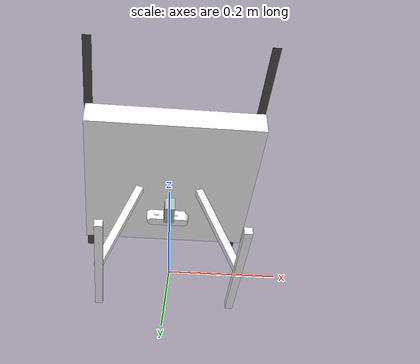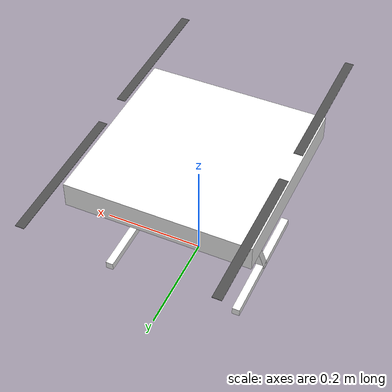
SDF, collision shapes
<?xml version='1.0' encoding='utf-8'?>
<sdf version="1.9">
  <model name="harpia_yolo_x500">
    <pose>0.0 0.0 0.23 0 0 1.5707</pose>
    <self_collide>false</self_collide>
    <static>false</static>
    <link name="base_link">
      <inertial>
        <mass>2.0</mass>
        <inertia>
          <ixx>0.02166666666666667</ixx>
          <ixy>0</ixy>
          <ixz>0</ixz>
          <iyy>0.02166666666666667</iyy>
          <iyz>0</iyz>
          <izz>0.04000000000000001</izz>
        </inertia>
      </inertial>
      <gravity>true</gravity>
      <velocity_decay />
      <visual name="base_link_visual">
        <pose>0 0 .025 0 0 3.141592654</pose>
        <geometry>
          <mesh>
            <scale>1 1 1</scale>
            <uri>model://x500/meshes/NXP-HGD-CF.dae</uri>
          </mesh>
        </geometry>
      </visual>
      <visual name="5010_motor_base_0">
        <pose>0.174 0.174 .032 0 0 -.45</pose>
        <geometry>
          <mesh>
            <scale>1 1 1</scale>
            <uri>model://x500/meshes/5010Base.dae</uri>
          </mesh>
        </geometry>
      </visual>
      <visual name="5010_motor_base_1">
        <pose>-0.174 0.174 .032 0 0 -.45</pose>
        <geometry>
          <mesh>
            <scale>1 1 1</scale>
            <uri>model://x500/meshes/5010Base.dae</uri>
          </mesh>
        </geometry>
      </visual>
      <visual name="5010_motor_base_2">
        <pose>0.174 -0.174 .032 0 0 -.45</pose>
        <geometry>
          <mesh>
            <scale>1 1 1</scale>
            <uri>model://x500/meshes/5010Base.dae</uri>
          </mesh>
        </geometry>
      </visual>
      <visual name="5010_motor_base_3">
        <pose>-0.174 -0.174 .032 0 0 -.45</pose>
        <geometry>
          <mesh>
            <scale>1 1 1</scale>
            <uri>model://x500/meshes/5010Base.dae</uri>
          </mesh>
        </geometry>
      </visual>
      <visual name="NXP_FMUK66_FRONT">
        <pose>0.047 .001 .043 1 0 1.57</pose>
        <cast_shadows>false</cast_shadows>
        <geometry>
          <plane>
            <normal>0 0 1</normal>
            <size>.013 .007</size>
          </plane>
        </geometry>
        <material>
          <diffuse>1.0 1.0 1.0</diffuse>
          <specular>1.0 1.0 1.0</specular>
          <pbr>
            <metal>
              <albedo_map>model://x500/materials/textures/nxp.png</albedo_map>
            </metal>
          </pbr>
        </material>
      </visual>
      <visual name="NXP_FMUK66_TOP">
        <pose>-0.023 0 .0515 0 0 -1.57</pose>
        <cast_shadows>false</cast_shadows>
        <geometry>
          <plane>
            <normal>0 0 1</normal>
            <size>.013 .007</size>
          </plane>
        </geometry>
        <material>
          <diffuse>1.0 1.0 1.0</diffuse>
          <specular>1.0 1.0 1.0</specular>
          <pbr>
            <metal>
              <albedo_map>model://x500/materials/textures/nxp.png</albedo_map>
            </metal>
          </pbr>
        </material>
      </visual>
      <visual name="RDDRONE_FMUK66_TOP">
        <pose>-.03 0 .0515 0 0 -1.57</pose>
        <cast_shadows>false</cast_shadows>
        <geometry>
          <plane>
            <normal>0 0 1</normal>
            <size>.032 .0034</size>
          </plane>
        </geometry>
        <material>
          <diffuse>1.0 1.0 1.0</diffuse>
          <specular>1.0 1.0 1.0</specular>
          <pbr>
            <metal>
              <albedo_map>model://x500/materials/textures/rd.png</albedo_map>
            </metal>
          </pbr>
        </material>
      </visual>
      <collision name="base_link_collision_0">
        <pose>0 0 .007 0 0 0</pose>
        <geometry>
          <box>
            <size>0.35355339059327373 0.35355339059327373 0.05</size>
          </box>
        </geometry>
        <surface>
          <contact>
            <ode>
              <min_depth>0.001</min_depth>
              <max_vel>0</max_vel>
            </ode>
          </contact>
          <friction>
            <ode />
          </friction>
        </surface>
      </collision>
      <collision name="base_link_collision_1">
        <pose>0 -0.098 -.123 -0.35 0 0</pose>
        <geometry>
          <box>
            <size>0.015 0.015 0.21</size>
          </box>
        </geometry>
        <surface>
          <contact>
            <ode>
              <min_depth>0.001</min_depth>
              <max_vel>0</max_vel>
            </ode>
          </contact>
          <friction>
            <ode />
          </friction>
        </surface>
      </collision>
      <collision name="base_link_collision_2">
        <pose>0 0.098 -.123 0.35 0 0</pose>
        <geometry>
          <box>
            <size>0.015 0.015 0.21</size>
          </box>
        </geometry>
        <surface>
          <contact>
            <ode>
              <min_depth>0.001</min_depth>
              <max_vel>0</max_vel>
            </ode>
          </contact>
          <friction>
            <ode />
          </friction>
        </surface>
      </collision>
      <collision name="base_link_collision_3">
        <pose>0 -0.132 -.2195 0 0 0</pose>
        <geometry>
          <box>
            <size>0.25 0.015 0.015</size>
          </box>
        </geometry>
        <surface>
          <contact>
            <ode>
              <min_depth>0.001</min_depth>
              <max_vel>0</max_vel>
            </ode>
          </contact>
          <friction>
            <ode />
          </friction>
        </surface>
      </collision>
      <collision name="base_link_collision_4">
        <pose>0 0.132 -.2195 0 0 0</pose>
        <geometry>
          <box>
            <size>0.25 0.015 0.015</size>
          </box>
        </geometry>
        <surface>
          <contact>
            <ode>
              <min_depth>0.001</min_depth>
              <max_vel>0</max_vel>
            </ode>
          </contact>
          <friction>
            <ode />
          </friction>
        </surface>
      </collision>
      <sensor name="air_pressure_sensor" type="air_pressure">
        <always_on>1</always_on>
        <update_rate>50</update_rate>
        <air_pressure>
          <pressure>
            <noise type="gaussian">
              <mean>0</mean>
              <stddev>0.01</stddev>
            </noise>
          </pressure>
        </air_pressure>
      </sensor>
      <sensor name="imu_sensor" type="imu">
        <always_on>1</always_on>
        <update_rate>250</update_rate>
      </sensor>
    </link>
    <link name="rotor_0">
      <gravity>true</gravity>
      <self_collide>false</self_collide>
      <velocity_decay />
      <pose>0.174 -0.174 0.06 0 0 0</pose>
      <inertial>
        <mass>0.016076923076923075</mass>
        <inertia>
          <ixx>3.8464910483993325e-07</ixx>
          <iyy>2.6115851691700804e-05</iyy>
          <izz>2.649858234714004e-05</izz>
        </inertia>
      </inertial>
      <visual name="rotor_0_visual">
        <pose>-0.022 -0.14638461538461536 -0.016 0 0 0</pose>
        <geometry>
          <mesh>
            <scale>0.8461538461538461 0.8461538461538461 0.8461538461538461</scale>
            <uri>model://x500/meshes/1345_prop_ccw.stl</uri>
          </mesh>
        </geometry>
        <material>
          <script>
            <name>Gazebo/DarkGrey</name>
            <uri>file://media/materials/scripts/gazebo.material</uri>
          </script>
        </material>
      </visual>
      <visual name="rotor_0_visual_motor_bell">
        <pose>0 0 -.032 0 0 0</pose>
        <geometry>
          <mesh>
            <scale>1 1 1</scale>
            <uri>model://x500/meshes/5010Bell.dae</uri>
          </mesh>
        </geometry>
      </visual>
      <collision name="rotor_0_collision">
        <pose>0 0 0 0 0 0 </pose>
        <geometry>
          <box>
            <size>0.2792307692307692 0.016923076923076923 0.0008461538461538462</size>
          </box>
        </geometry>
        <surface>
          <contact>
            <ode>
              <min_depth>0.001</min_depth>
              <max_vel>0</max_vel>
            </ode>
          </contact>
          <friction>
            <ode />
          </friction>
        </surface>
      </collision>
    </link>
    <joint name="rotor_0_joint" type="revolute">
      <parent>base_link</parent>
      <child>rotor_0</child>
      <axis>
        <xyz>0 0 1</xyz>
        <limit>
          <lower>-1e+16</lower>
          <upper>1e+16</upper>
        </limit>
        <dynamics>
          <spring_reference>0</spring_reference>
          <spring_stiffness>0</spring_stiffness>
        </dynamics>
      </axis>
    </joint>
    <link name="rotor_1">
      <gravity>true</gravity>
      <self_collide>false</self_collide>
      <velocity_decay />
      <pose>-0.174 0.174 0.06 0 0 0</pose>
      <inertial>
        <mass>0.016076923076923075</mass>
        <inertia>
          <ixx>3.8464910483993325e-07</ixx>
          <iyy>2.6115851691700804e-05</iyy>
          <izz>2.649858234714004e-05</izz>
        </inertia>
      </inertial>
      <visual name="rotor_1_visual">
        <pose>-0.022 -0.14638461538461536 -0.016 0 0 0</pose>
        <geometry>
          <mesh>
            <scale>0.8461538461538461 0.8461538461538461 0.8461538461538461</scale>
            <uri>model://x500/meshes/1345_prop_ccw.stl</uri>
          </mesh>
        </geometry>
        <material>
          <script>
            <name>Gazebo/DarkGrey</name>
            <uri>file://media/materials/scripts/gazebo.material</uri>
          </script>
        </material>
      </visual>
      <visual name="rotor_1_visual_motor_top">
        <pose>0 0 -.032 0 0 0</pose>
        <geometry>
          <mesh>
            <scale>1 1 1</scale>
            <uri>model://x500/meshes/5010Bell.dae</uri>
          </mesh>
        </geometry>
      </visual>
      <collision name="rotor_1_collision">
        <pose>0 0 0 0 0 0 </pose>
        <geometry>
          <box>
            <size>0.2792307692307692 0.016923076923076923 0.0008461538461538462</size>
          </box>
        </geometry>
        <surface>
          <contact>
            <ode>
              <min_depth>0.001</min_depth>
              <max_vel>0</max_vel>
            </ode>
          </contact>
          <friction>
            <ode />
          </friction>
        </surface>
      </collision>
    </link>
    <joint name="rotor_1_joint" type="revolute">
      <parent>base_link</parent>
      <child>rotor_1</child>
      <axis>
        <xyz>0 0 1</xyz>
        <limit>
          <lower>-1e+16</lower>
          <upper>1e+16</upper>
        </limit>
        <dynamics>
          <spring_reference>0</spring_reference>
          <spring_stiffness>0</spring_stiffness>
        </dynamics>
      </axis>
    </joint>
    <link name="rotor_2">
      <gravity>true</gravity>
      <self_collide>false</self_collide>
      <velocity_decay />
      <pose>0.174 0.174 0.06 0 0 0</pose>
      <inertial>
        <mass>0.016076923076923075</mass>
        <inertia>
          <ixx>3.8464910483993325e-07</ixx>
          <iyy>2.6115851691700804e-05</iyy>
          <izz>2.649858234714004e-05</izz>
        </inertia>
      </inertial>
      <visual name="rotor_2_visual">
        <pose>-0.022 -0.14638461538461536 -0.016 0 0 0</pose>
        <geometry>
          <mesh>
            <scale>0.8461538461538461 0.8461538461538461 0.8461538461538461</scale>
            <uri>model://x500/meshes/1345_prop_cw.stl</uri>
          </mesh>
        </geometry>
        <material>
          <script>
            <name>Gazebo/DarkGrey</name>
            <uri>file://media/materials/scripts/gazebo.material</uri>
          </script>
        </material>
      </visual>
      <visual name="rotor_2_visual_motor_top">
        <pose>0 0 -.032 0 0 0</pose>
        <geometry>
          <mesh>
            <scale>1 1 1</scale>
            <uri>model://x500/meshes/5010Bell.dae</uri>
          </mesh>
        </geometry>
      </visual>
      <collision name="rotor_2_collision">
        <pose>0 0 0 0 0 0 </pose>
        <geometry>
          <box>
            <size>0.2792307692307692 0.016923076923076923 0.0008461538461538462</size>
          </box>
        </geometry>
        <surface>
          <contact>
            <ode>
              <min_depth>0.001</min_depth>
              <max_vel>0</max_vel>
            </ode>
          </contact>
          <friction>
            <ode />
          </friction>
        </surface>
      </collision>
    </link>
    <joint name="rotor_2_joint" type="revolute">
      <parent>base_link</parent>
      <child>rotor_2</child>
      <axis>
        <xyz>0 0 1</xyz>
        <limit>
          <lower>-1e+16</lower>
          <upper>1e+16</upper>
        </limit>
        <dynamics>
          <spring_reference>0</spring_reference>
          <spring_stiffness>0</spring_stiffness>
        </dynamics>
      </axis>
    </joint>
    <link name="rotor_3">
      <gravity>true</gravity>
      <self_collide>false</self_collide>
      <velocity_decay />
      <pose>-0.174 -0.174 0.06 0 0 0</pose>
      <inertial>
        <mass>0.016076923076923075</mass>
        <inertia>
          <ixx>3.8464910483993325e-07</ixx>
          <iyy>2.6115851691700804e-05</iyy>
          <izz>2.649858234714004e-05</izz>
        </inertia>
      </inertial>
      <visual name="rotor_3_visual">
        <pose>-0.022 -0.14638461538461536 -0.016 0 0 0</pose>
        <geometry>
          <mesh>
            <scale>0.8461538461538461 0.8461538461538461 0.8461538461538461</scale>
            <uri>model://x500/meshes/1345_prop_cw.stl</uri>
          </mesh>
        </geometry>
        <material>
          <script>
            <name>Gazebo/DarkGrey</name>
            <uri>file://media/materials/scripts/gazebo.material</uri>
          </script>
        </material>
      </visual>
      <visual name="rotor_3_visual_motor_top">
        <pose>0 0 -.032 0 0 0</pose>
        <geometry>
          <mesh>
            <scale>1 1 1</scale>
            <uri>model://x500/meshes/5010Bell.dae</uri>
          </mesh>
        </geometry>
      </visual>
      <collision name="rotor_3_collision">
        <pose>0 0 0 0 0 0 </pose>
        <geometry>
          <box>
            <size>0.2792307692307692 0.016923076923076923 0.0008461538461538462</size>
          </box>
        </geometry>
        <surface>
          <contact>
            <ode>
              <min_depth>0.001</min_depth>
              <max_vel>0</max_vel>
            </ode>
          </contact>
          <friction>
            <ode />
          </friction>
        </surface>
      </collision>
    </link>
    <joint name="rotor_3_joint" type="revolute">
      <parent>base_link</parent>
      <child>rotor_3</child>
      <axis>
        <xyz>0 0 1</xyz>
        <limit>
          <lower>-1e+16</lower>
          <upper>1e+16</upper>
        </limit>
        <dynamics>
          <spring_reference>0</spring_reference>
          <spring_stiffness>0</spring_stiffness>
        </dynamics>
      </axis>
    </joint>
    <plugin filename="gz-sim-multicopter-motor-model-system" name="gz::sim::systems::MulticopterMotorModel">
      <jointName>rotor_0_joint</jointName>
      <linkName>rotor_0</linkName>
      <turningDirection>ccw</turningDirection>
      <timeConstantUp>0.0125</timeConstantUp>
      <timeConstantDown>0.025</timeConstantDown>
      <maxRotVelocity>1000.0</maxRotVelocity>
      <motorConstant>8.54858e-06</motorConstant>
      <momentConstant>0.016</momentConstant>
      <commandSubTopic>command/motor_speed</commandSubTopic>
      <motorNumber>0</motorNumber>
      <rotorDragCoefficient>8.06428e-05</rotorDragCoefficient>
      <rollingMomentCoefficient>1e-06</rollingMomentCoefficient>
      <rotorVelocitySlowdownSim>10</rotorVelocitySlowdownSim>
      <motorType>velocity</motorType>
    </plugin>
    <plugin filename="gz-sim-multicopter-motor-model-system" name="gz::sim::systems::MulticopterMotorModel">
      <jointName>rotor_1_joint</jointName>
      <linkName>rotor_1</linkName>
      <turningDirection>ccw</turningDirection>
      <timeConstantUp>0.0125</timeConstantUp>
      <timeConstantDown>0.025</timeConstantDown>
      <maxRotVelocity>1000.0</maxRotVelocity>
      <motorConstant>8.54858e-06</motorConstant>
      <momentConstant>0.016</momentConstant>
      <commandSubTopic>command/motor_speed</commandSubTopic>
      <motorNumber>1</motorNumber>
      <rotorDragCoefficient>8.06428e-05</rotorDragCoefficient>
      <rollingMomentCoefficient>1e-06</rollingMomentCoefficient>
      <rotorVelocitySlowdownSim>10</rotorVelocitySlowdownSim>
      <motorType>velocity</motorType>
    </plugin>
    <plugin filename="gz-sim-multicopter-motor-model-system" name="gz::sim::systems::MulticopterMotorModel">
      <jointName>rotor_2_joint</jointName>
      <linkName>rotor_2</linkName>
      <turningDirection>cw</turningDirection>
      <timeConstantUp>0.0125</timeConstantUp>
      <timeConstantDown>0.025</timeConstantDown>
      <maxRotVelocity>1000.0</maxRotVelocity>
      <motorConstant>8.54858e-06</motorConstant>
      <momentConstant>0.016</momentConstant>
      <commandSubTopic>command/motor_speed</commandSubTopic>
      <motorNumber>2</motorNumber>
      <rotorDragCoefficient>8.06428e-05</rotorDragCoefficient>
      <rollingMomentCoefficient>1e-06</rollingMomentCoefficient>
      <rotorVelocitySlowdownSim>10</rotorVelocitySlowdownSim>
      <motorType>velocity</motorType>
    </plugin>
    <plugin filename="gz-sim-multicopter-motor-model-system" name="gz::sim::systems::MulticopterMotorModel">
      <jointName>rotor_3_joint</jointName>
      <linkName>rotor_3</linkName>
      <turningDirection>cw</turningDirection>
      <timeConstantUp>0.0125</timeConstantUp>
      <timeConstantDown>0.025</timeConstantDown>
      <maxRotVelocity>1000.0</maxRotVelocity>
      <motorConstant>8.54858e-06</motorConstant>
      <momentConstant>0.016</momentConstant>
      <commandSubTopic>command/motor_speed</commandSubTopic>
      <motorNumber>3</motorNumber>
      <rotorDragCoefficient>8.06428e-05</rotorDragCoefficient>
      <rollingMomentCoefficient>1e-06</rollingMomentCoefficient>
      <rotorVelocitySlowdownSim>10</rotorVelocitySlowdownSim>
      <motorType>velocity</motorType>
    </plugin>
    <include merge="true">
      <uri>model://harpia/LW20</uri>
      <pose relative_to="base_link">0 0 -0.079 0 1.5707 0</pose>
    </include>
    <include merge="true">
      <uri>model://harpia/realsense_d435</uri>
      <pose relative_to="base_link">0.05 0.0 -0.045 1.5707 0 1.5707</pose>
    </include>
    <joint name="CameraJoint" type="fixed">
      <parent>base_link</parent>
      <child>camera_link</child>
      <pose relative_to="base_link">0 0 0 0 0 0</pose>
    </joint>
    <joint name="lidar_model_joint" type="fixed">
      <parent>base_link</parent>
      <child>lw20_link</child>
      <pose relative_to="base_link">-0 0 0 0 0 0</pose>
    </joint>
    <joint name="lidar_sensor_joint" type="fixed">
      <parent>base_link</parent>
      <child>lidar_sensor_link</child>
    </joint>
    <link name="lidar_sensor_link">
      <pose relative_to="base_link">0 0 -0.05 0 1.57  0</pose>
      <inertial>
        <mass>0.001</mass>
        <inertia>
          <ixx>0.00001</ixx>
          <iyy>0.00001</iyy>
          <izz>0.00001</izz>
          <ixy>0.0</ixy>
          <ixz>0.0</ixz>
          <iyz>0.0</iyz>
        </inertia>
      </inertial>
      <sensor name="lidar" type="gpu_lidar">
        <pose>0 0 0 3.14 0 0</pose>
        <update_rate>50</update_rate>
        <ray>
          <scan>
            <horizontal>
              <samples>1</samples>
              <resolution>1</resolution>
              <min_angle>0</min_angle>
              <max_angle>0</max_angle>
            </horizontal>
            <vertical>
              <samples>1</samples>
              <resolution>1</resolution>
              <min_angle>0</min_angle>
              <max_angle>0</max_angle>
            </vertical>
          </scan>
          <range>
            <min>0.1</min>
            <max>100.0</max>
            <resolution>0.01</resolution>
          </range>
        </ray>
        <always_on>1</always_on>
        <visualize>true</visualize>
        <topic>lidar</topic>
      </sensor>
    </link>
  </model>
</sdf>

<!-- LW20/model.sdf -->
<sdf version="1.6">
  <model name="LW20">
    <link name="lw20_link">
      <pose>0 0 0 0 0 0</pose>
      <inertial>
        <pose>0 0 0 0 0 0</pose>
        <mass>0.02</mass>
        <inertia>
          <ixx>0.000004</ixx>
          <ixy>0</ixy>
          <ixz>0</ixz>
          <iyy>0.000004</iyy>
          <iyz>0</iyz>
          <izz>0.000002</izz>
        </inertia>
      </inertial>
      <collision name="collision_base">
        <pose>0 0 0 0 0 0</pose>
        <geometry>
          <box>
            <size>0.03 0.02 0.043</size>
          </box>
        </geometry>
      </collision>
      <visual name="visual">
        <geometry>
          <mesh>
            <uri>model://harpia/LW20/meshes/LW20.dae</uri>
          </mesh>
        </geometry>
      </visual>
    </link>
  </model>
</sdf>

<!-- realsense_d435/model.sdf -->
<sdf version="1.6">
  <model name="realsense_d435">
    <link name="camera_link">
      <inertial>
        <mass>0.0615752</mass>
        <inertia>
          <ixx>9.108e-05</ixx>
          <ixy>0</ixy>
          <ixz>0</ixz>
          <iyy>2.51e-06</iyy>
          <iyz>0</iyz>
          <izz>8.931e-05</izz>
        </inertia>
        <pose frame=''>0 0 0 0 -0 0</pose>
      </inertial>
      <collision name="collision">
        <geometry>
          <mesh>
            <uri>model://harpia/realsense_d435/meshes/realsense.dae</uri>
          </mesh>
        </geometry>
      </collision>
      <visual name= "visual">
        <geometry>
          <mesh>
            <uri>model://harpia/realsense_d435/meshes/realsense.dae</uri>
            <submesh>
              <name>RealSense</name>
              <center>false</center>
            </submesh>
          </mesh>
        </geometry>
        <material>
          <diffuse>1.0 1.0 1.0</diffuse>
          <specular>1.0 1.0 1.0</specular>
          <pbr>
            <metal>
              <albedo_map>model://harpia/realsense_d435/textures/RealSense_Albedo.png</albedo_map>
              <normal_map>model://harpia/realsense_d435/textures/RealSense_Normal.png</normal_map>
              <metalness_map>model://harpia/realsense_d435/textures/RealSense_Metalness.png</metalness_map>
              <roughness_map>model://harpia/realsense_d435/textures/RealSense_Roughness.png</roughness_map>
            </metal>
          </pbr>
        </material>
      </visual>

      <!-- RGB Sensor -->
      <sensor name="color" type="camera">
        <pose frame="">0 -0.046 0.004 0 0 -1.5707</pose>
        <camera name="__default__">
          <horizontal_fov>1.20428</horizontal_fov>
          <image>
            <width>640</width>
            <height>480</height>
            <format>RGB_INT8</format>
          </image>
          <clip>
            <near>0.1</near>
            <far>100</far>
          </clip>
          <noise>
            <type>gaussian</type>
            <mean>0.0</mean>
            <stddev>0.007</stddev>
          </noise>
        </camera>
        <always_on>1</always_on>
        <update_rate>60</update_rate>
        <visualize>1</visualize>
        <topic>color_cam_downward</topic>
      </sensor>

      <!-- Infrared 1 -->
      <sensor name="ired1" type="camera">
        <pose frame="">0 -0.06 0.004 0 0 -1.5707</pose>
        <camera name="__default__">
          <horizontal_fov>1.5708</horizontal_fov>
          <image>
            <width>640</width>
            <height>480</height>
            <format>L_INT8</format>
          </image>
          <clip>
            <near>0.1</near>
            <far>100</far>
          </clip>
          <noise>
            <type>gaussian</type>
            <mean>0.0</mean>
            <stddev>0.007</stddev>
          </noise>
        </camera>
        <always_on>1</always_on>
        <update_rate>30</update_rate>
        <visualize>0</visualize>
        <topic>ired1_cam_downward</topic>
      </sensor>

      <!-- Infrared 2 -->
      <sensor name="ired2" type="camera">
        <pose frame="">0 0.01 0.004 0 0 -1.5707</pose>
        <camera name="__default__">
          <horizontal_fov>1.5708</horizontal_fov>
          <image>
            <width>640</width>
            <height>480</height>
            <format>L_INT8</format>
          </image>
          <clip>
            <near>0.1</near>
            <far>100</far>
          </clip>
          <noise>
            <type>gaussian</type>
            <mean>0.0</mean>
            <stddev>0.007</stddev>
          </noise>
        </camera>
        <always_on>1</always_on>
        <update_rate>30</update_rate>
        <visualize>0</visualize>
        <topic>ired2_cam_downward</topic>
      </sensor>

      <!-- Depth sensor -->
      <sensor name="depth" type="depth">
        <pose frame="">0 -0.03 0.004 0 0 -1.5707</pose>
        <camera name="__default__">
          <horizontal_fov>1.51844</horizontal_fov>
          <image>
            <format>R8G8B8</format>
            <width>640</width>
            <height>480</height>
          </image>
          <clip>
            <near>0.001</near>
            <far>65.535</far>
          </clip>
          <noise>
            <type>gaussian</type>
            <mean>0.0</mean>
            <stddev>0.007</stddev>
          </noise>
        </camera>
        <always_on>1</always_on>
        <update_rate>30</update_rate>
        <visualize>0</visualize>
        <topic>depth_cam_downward</topic>
      </sensor>

      <!-- IMU  -->
			<sensor name="imu_sensor" type="imu">
				<always_on>1</always_on>
				<update_rate>200</update_rate>
				<visualize>0</visualize>
				<topic>imu_downward</topic>

				<imu>
					<enable_orientation>0</enable_orientation>

					<angular_velocity>
						<x>
							<noise type="gaussian">
								<mean>0</mean>
								<stddev>0.009</stddev>
								<bias_mean>0.00075</bias_mean>
								<bias_stddev>0.005</bias_stddev>
								<dynamic_bias_stddev>0.00002</dynamic_bias_stddev>
								<dynamic_bias_correlation_time>400.0</dynamic_bias_correlation_time>
								<precision>0.00025</precision>
							</noise>
						</x>
						<y>
							<noise type="gaussian">
								<mean>0</mean>
								<stddev>0.009</stddev>
								<bias_mean>0.00075</bias_mean>
								<bias_stddev>0.005</bias_stddev>
								<dynamic_bias_stddev>0.00002</dynamic_bias_stddev>
								<dynamic_bias_correlation_time>400.0</dynamic_bias_correlation_time>
								<precision>0.00025</precision>
							</noise>
						</y>
						<z>
							<noise type="gaussian">
								<mean>0</mean>
								<stddev>0.009</stddev>
								<bias_mean>0.00075</bias_mean>
								<bias_stddev>0.005</bias_stddev>
								<dynamic_bias_stddev>0.00002</dynamic_bias_stddev>
								<dynamic_bias_correlation_time>400.0</dynamic_bias_correlation_time>
								<precision>0.00025</precision>
							</noise>
						</z>
					</angular_velocity>

					<linear_acceleration>
						<x>
							<noise type="gaussian">
								<mean>0</mean>
								<stddev>0.021</stddev>
								<bias_mean>0.05</bias_mean>
								<bias_stddev>0.0075</bias_stddev>
								<dynamic_bias_stddev>0.000375</dynamic_bias_stddev>
								<dynamic_bias_correlation_time>175.0</dynamic_bias_correlation_time>
								<precision>0.005</precision>
							</noise>
						</x>
						<y>
							<noise type="gaussian">
								<mean>0</mean>
								<stddev>0.021</stddev>
								<bias_mean>0.05</bias_mean>
								<bias_stddev>0.0075</bias_stddev>
								<dynamic_bias_stddev>0.000375</dynamic_bias_stddev>
								<dynamic_bias_correlation_time>175.0</dynamic_bias_correlation_time>
								<precision>0.005</precision>
							</noise>
						</y>
						<z>
							<noise type="gaussian">
								<mean>0</mean>
								<stddev>0.021</stddev>
								<bias_mean>0.05</bias_mean>
								<bias_stddev>0.0075</bias_stddev>
								<dynamic_bias_stddev>0.000375</dynamic_bias_stddev>
								<dynamic_bias_correlation_time>175.0</dynamic_bias_correlation_time>
								<precision>0.005</precision>
							</noise>
						</z>
					</linear_acceleration>
				</imu>
			</sensor>

    </link>
  </model>
</sdf>
